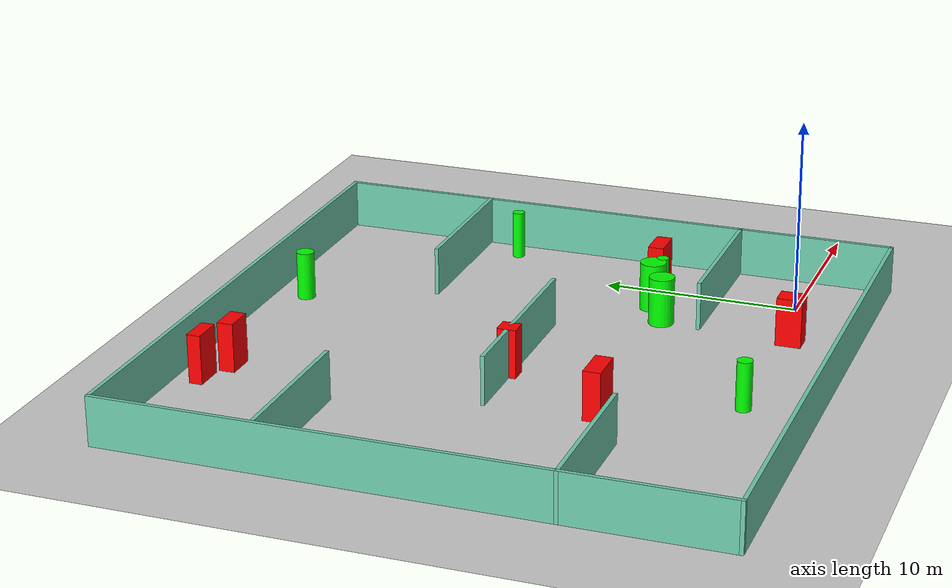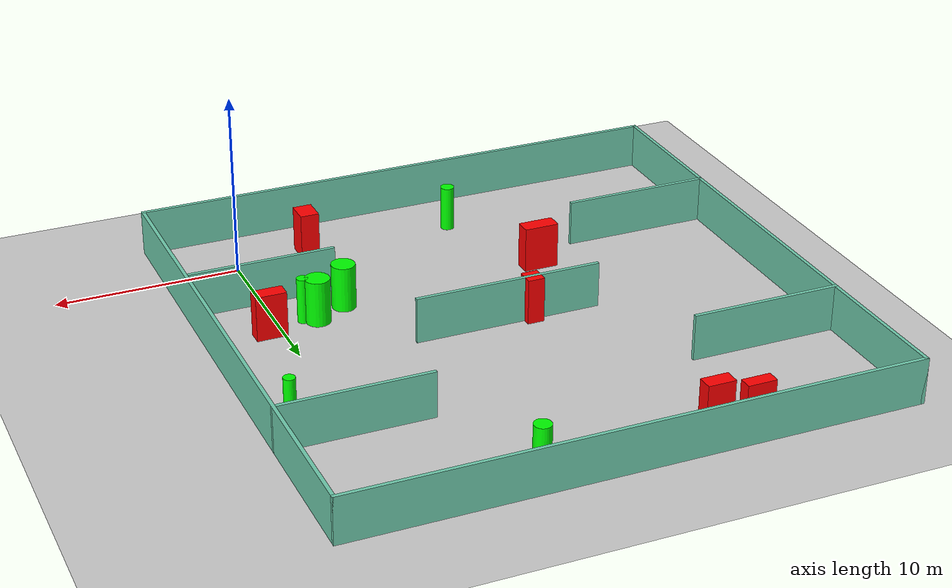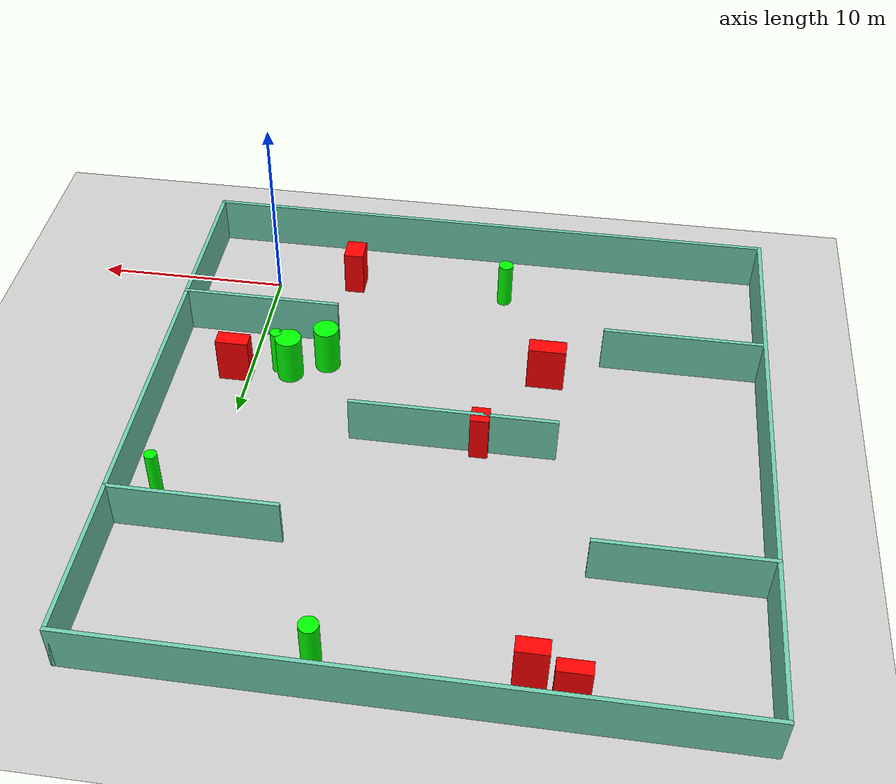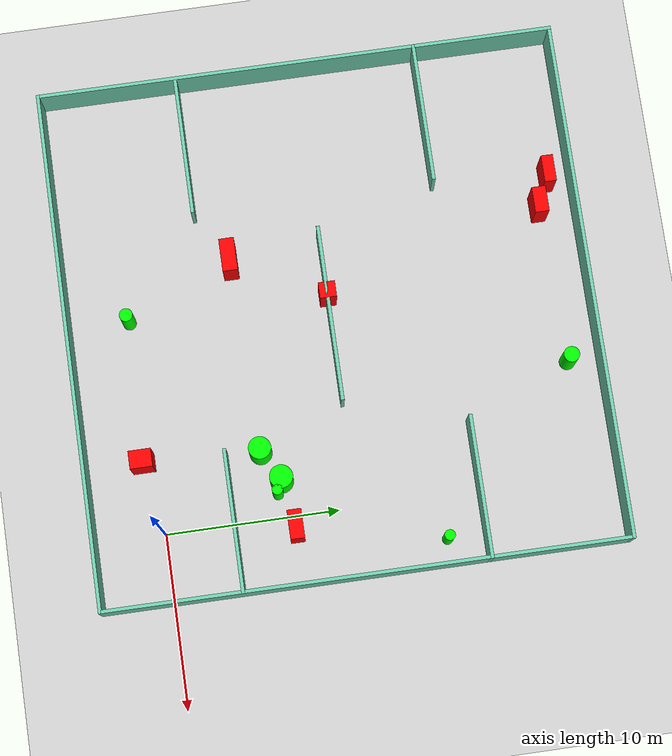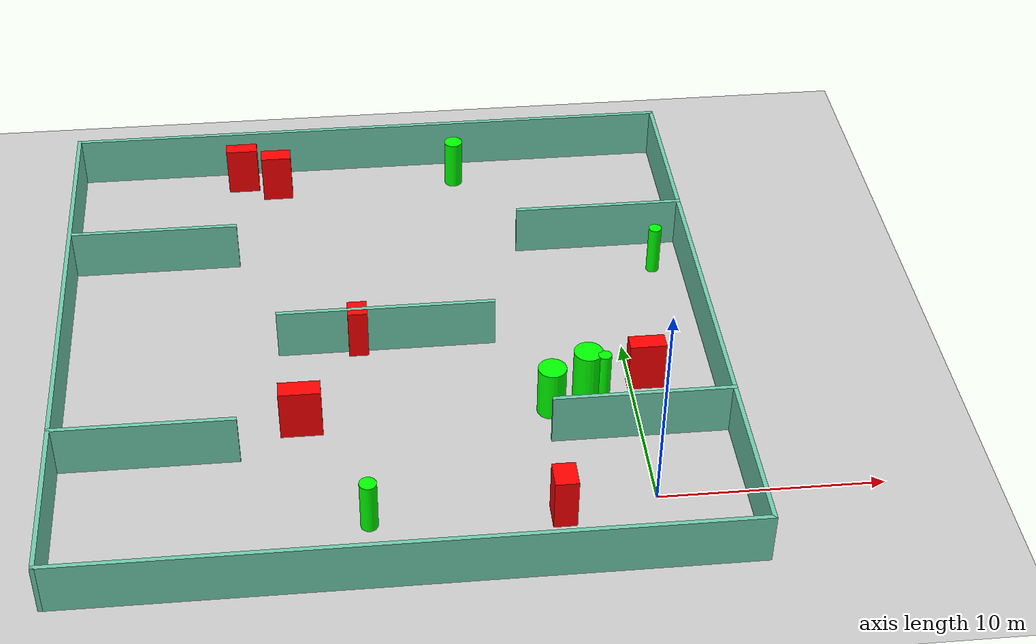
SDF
<sdf version="1.7">
 <world name="default">
  <light name="sun" type="directional">
   <pose>0 0 10 0 -0 0</pose>
   <diffuse>0.8 0.8 0.8 1</diffuse>
   <specular>0.2 0.2 0.2 1</specular>
   <attenuation>
    <range>1000</range>
    <constant>0.9</constant>
    <linear>0.01</linear>
    <quadratic>0.001</quadratic>
   </attenuation>
   <direction>-0.5 0.1 -0.9</direction>
   <spot><inner_angle>0</inner_angle><outer_angle>0</outer_angle><falloff>0</falloff></spot>
  </light>
  <model name="ground_plane">
   <static>1</static>
   <link name="link">
    <collision name="collision">
     <geometry><plane><normal>0 0 1</normal><size>100 100</size></plane></geometry>
     <surface>
      <contact><collide_bitmask>65535</collide_bitmask></contact>
      <friction><ode><mu>100</mu><mu2>50</mu2></ode></friction>
     </surface>
    </collision>
    <visual name="visual">
     <cast_shadows>0</cast_shadows>
     <geometry><plane><normal>0 0 1</normal><size>100 100</size></plane></geometry>
     <material>
      <script><uri>file://media/materials/scripts/gazebo.material</uri><name>Gazebo/Grey</name></script>
     </material>
    </visual>
   </link>
  </model>
  <gravity>0 0 -9.8</gravity>
  <magnetic_field>6e-06 2.3e-05 -4.2e-05</magnetic_field>
  <atmosphere type="adiabatic"/>
  <physics type="ode">
   <max_step_size>0.001</max_step_size>
   <real_time_factor>1</real_time_factor>
   <real_time_update_rate>1000</real_time_update_rate>
  </physics>
  <scene><ambient>0.4 0.4 0.4 1</ambient><background>0.7 0.7 0.7 1</background><shadows>1</shadows></scene>
  <spherical_coordinates>
   <surface_model>EARTH_WGS84</surface_model>
   <latitude_deg>0</latitude_deg>
   <longitude_deg>0</longitude_deg>
   <elevation>0</elevation>
   <heading_deg>0</heading_deg>
  </spherical_coordinates>
  <model name="my_base_walls">
   <link name="Wall_10">
    <collision name="Wall_10_Collision">
     <geometry><box><size>8.2 0.2 2.5</size></box></geometry>
     <pose>0 0 1.25 0 -0 0</pose>
    </collision>
    <visual name="Wall_10_Visual">
     <pose>0 0 1.25 0 -0 0</pose>
     <geometry><box><size>8.2 0.2 2.5</size></box></geometry>
     <material>
      <script><uri>file://media/materials/scripts/gazebo.material</uri><name>Gazebo/Grey</name></script>
      <ambient>0.435294 0.796078 0.67451 1</ambient>
     </material>
     <meta><layer>0</layer></meta>
    </visual>
    <pose>-11 -7 0 0 -0 0</pose>
   </link>
   <link name="Wall_12">
    <collision name="Wall_12_Collision">
     <geometry><box><size>8.2 0.2 2.5</size></box></geometry>
     <pose>0 0 1.25 0 -0 0</pose>
    </collision>
    <visual name="Wall_12_Visual">
     <pose>0 0 1.25 0 -0 0</pose>
     <geometry><box><size>8.2 0.2 2.5</size></box></geometry>
     <material>
      <script><uri>file://media/materials/scripts/gazebo.material</uri><name>Gazebo/Grey</name></script>
      <ambient>0.435294 0.796078 0.67451 1</ambient>
     </material>
     <meta><layer>0</layer></meta>
    </visual>
    <pose>-11 7 0 0 -0 0</pose>
   </link>
   <link name="Wall_14">
    <collision name="Wall_14_Collision">
     <geometry><box><size>8.2 0.2 2.5</size></box></geometry>
     <pose>0 0 1.25 0 -0 0</pose>
    </collision>
    <visual name="Wall_14_Visual">
     <pose>0 0 1.25 0 -0 0</pose>
     <geometry><box><size>8.2 0.2 2.5</size></box></geometry>
     <material>
      <script><uri>file://media/materials/scripts/gazebo.material</uri><name>Gazebo/Grey</name></script>
      <ambient>0.435294 0.796078 0.67451 1</ambient>
     </material>
     <meta><layer>0</layer></meta>
    </visual>
    <pose>11 7 0 0 -0 3.14159</pose>
   </link>
   <link name="Wall_16">
    <collision name="Wall_16_Collision">
     <geometry><box><size>10.2 0.2 2.5</size></box></geometry>
     <pose>0 0 1.25 0 -0 0</pose>
    </collision>
    <visual name="Wall_16_Visual">
     <pose>0 0 1.25 0 -0 0</pose>
     <geometry><box><size>10.2 0.2 2.5</size></box></geometry>
     <material>
      <script><uri>file://media/materials/scripts/gazebo.material</uri><name>Gazebo/Grey</name></script>
      <ambient>0.435294 0.796078 0.67451 1</ambient>
     </material>
     <meta><layer>0</layer></meta>
    </visual>
    <pose>0 0 0 0 -0 3.14159</pose>
   </link>
   <link name="Wall_2">
    <collision name="Wall_2_Collision">
     <geometry><box><size>30.2 0.2 2.5</size></box></geometry>
     <pose>0 0 1.25 0 -0 0</pose>
    </collision>
    <visual name="Wall_2_Visual">
     <pose>0 0 1.25 0 -0 0</pose>
     <geometry><box><size>30.2 0.2 2.5</size></box></geometry>
     <material>
      <script><uri>file://media/materials/scripts/gazebo.material</uri><name>Gazebo/Grey</name></script>
      <ambient>0.435294 0.796078 0.67451 1</ambient>
     </material>
     <meta><layer>0</layer></meta>
    </visual>
    <pose>0 -15 0 0 -0 3.14159</pose>
   </link>
   <link name="Wall_3">
    <collision name="Wall_3_Collision">
     <geometry><box><size>30.2 0.2 2.5</size></box></geometry>
     <pose>0 0 1.25 0 -0 0</pose>
    </collision>
    <visual name="Wall_3_Visual">
     <pose>0 0 1.25 0 -0 0</pose>
     <geometry><box><size>30.2 0.2 2.5</size></box></geometry>
     <material>
      <script><uri>file://media/materials/scripts/gazebo.material</uri><name>Gazebo/Grey</name></script>
      <ambient>0.435294 0.796078 0.67451 1</ambient>
     </material>
     <meta><layer>0</layer></meta>
    </visual>
    <pose>-15 0 0 0 -0 1.5708</pose>
   </link>
   <link name="Wall_4">
    <collision name="Wall_4_Collision">
     <geometry><box><size>30.2 0.2 2.5</size></box></geometry>
     <pose>0 0 1.25 0 -0 0</pose>
    </collision>
    <visual name="Wall_4_Visual">
     <pose>0 0 1.25 0 -0 0</pose>
     <geometry><box><size>30.2 0.2 2.5</size></box></geometry>
     <material>
      <script><uri>file://media/materials/scripts/gazebo.material</uri><name>Gazebo/Grey</name></script>
      <ambient>0.435294 0.796078 0.67451 1</ambient>
     </material>
     <meta><layer>0</layer></meta>
    </visual>
    <pose>0 15 0 0 -0 0</pose>
   </link>
   <link name="Wall_6">
    <collision name="Wall_6_Collision">
     <geometry><box><size>30.2 0.2 2.5</size></box></geometry>
     <pose>0 0 1.25 0 -0 0</pose>
    </collision>
    <visual name="Wall_6_Visual">
     <pose>0 0 1.25 0 -0 0</pose>
     <geometry><box><size>30.2 0.2 2.5</size></box></geometry>
     <material>
      <script><uri>file://media/materials/scripts/gazebo.material</uri><name>Gazebo/Grey</name></script>
      <ambient>0.435294 0.796078 0.67451 1</ambient>
     </material>
     <meta><layer>0</layer></meta>
    </visual>
    <pose>15 0 0 0 -0 1.5708</pose>
   </link>
   <link name="Wall_8">
    <collision name="Wall_8_Collision">
     <geometry><box><size>8.2 0.2 2.5</size></box></geometry>
     <pose>0 0 1.25 0 -0 0</pose>
    </collision>
    <visual name="Wall_8_Visual">
     <pose>0 0 1.25 0 -0 0</pose>
     <geometry><box><size>8.2 0.2 2.5</size></box></geometry>
     <material>
      <script><uri>file://media/materials/scripts/gazebo.material</uri><name>Gazebo/Grey</name></script>
      <ambient>0.435294 0.796078 0.67451 1</ambient>
     </material>
     <meta><layer>0</layer></meta>
    </visual>
    <pose>11 -7 0 0 -0 3.14159</pose>
   </link>
   <static>1</static>
   <pose>-11 11 0 0 -0 0</pose>
  </model>
  <model name="cylinder1">
   <static>1</static>
   <link name="link">
    <inertial>
     <mass>1</mass>
     <inertia><ixx>0.5</ixx><ixy>0</ixy><ixz>0</ixz><iyy>0.5</iyy><iyz>0</iyz><izz>1</izz></inertia>
    </inertial>
    <collision name="collision">
     <geometry><cylinder><radius>0.3812355498788918</radius><length>2.5</length></cylinder></geometry>
    </collision>
    <visual name="visual">
     <geometry><cylinder><radius>0.3812355498788918</radius><length>2.5</length></cylinder></geometry>
     <material>
      <ambient>0 1 0 1</ambient>
      <diffuse>0 1 0 1</diffuse>
      <specular>0.1 0.1 0.1 1</specular>
      <emissive>0 0 0 0</emissive>
     </material>
    </visual>
   </link>
   <pose>-12.463966723201844 -0.52225226750372 1.25 0 0 0</pose>
  </model>
  <model name="cylinder2">
   <static>1</static>
   <link name="link">
    <inertial>
     <mass>1</mass>
     <inertia><ixx>0.5</ixx><ixy>0</ixy><ixz>0</ixz><iyy>0.5</iyy><iyz>0</iyz><izz>1</izz></inertia>
    </inertial>
    <collision name="collision">
     <geometry><cylinder><radius>0.45327531250505565</radius><length>2.5</length></cylinder></geometry>
    </collision>
    <visual name="visual">
     <geometry><cylinder><radius>0.45327531250505565</radius><length>2.5</length></cylinder></geometry>
     <material>
      <ambient>0 1 0 1</ambient>
      <diffuse>0 1 0 1</diffuse>
      <specular>0.1 0.1 0.1 1</specular>
      <emissive>0 0 0 0</emissive>
     </material>
    </visual>
   </link>
   <pose>-6.683548601376458 24.216663972334675 1.25 0 0 0</pose>
  </model>
  <model name="cylinder3">
   <static>1</static>
   <link name="link">
    <inertial>
     <mass>1</mass>
     <inertia><ixx>0.5</ixx><ixy>0</ixy><ixz>0</ixz><iyy>0.5</iyy><iyz>0</iyz><izz>1</izz></inertia>
    </inertial>
    <collision name="collision">
     <geometry><cylinder><radius>0.309569724954609</radius><length>2.5</length></cylinder></geometry>
    </collision>
    <visual name="visual">
     <geometry><cylinder><radius>0.309569724954609</radius><length>2.5</length></cylinder></geometry>
     <material>
      <ambient>0 1 0 1</ambient>
      <diffuse>0 1 0 1</diffuse>
      <specular>0.1 0.1 0.1 1</specular>
      <emissive>0 0 0 0</emissive>
     </material>
    </visual>
   </link>
   <pose>2.485812698754355 15.849126181771034 1.25 0 0 0</pose>
  </model>
  <model name="cylinder4">
   <static>1</static>
   <link name="link">
    <inertial>
     <mass>1</mass>
     <inertia><ixx>0.5</ixx><ixy>0</ixy><ixz>0</ixz><iyy>0.5</iyy><iyz>0</iyz><izz>1</izz></inertia>
    </inertial>
    <collision name="collision">
     <geometry><cylinder><radius>0.3072029299104411</radius><length>2.5</length></cylinder></geometry>
    </collision>
    <visual name="visual">
     <geometry><cylinder><radius>0.3072029299104411</radius><length>2.5</length></cylinder></geometry>
     <material>
      <ambient>0 1 0 1</ambient>
      <diffuse>0 1 0 1</diffuse>
      <specular>0.1 0.1 0.1 1</specular>
      <emissive>0 0 0 0</emissive>
     </material>
    </visual>
   </link>
   <pose>-1.382367459564037 6.657229058669236 1.25 0 0 0</pose>
  </model>
  <model name="cylinder5">
   <static>1</static>
   <link name="link">
    <inertial>
     <mass>1</mass>
     <inertia><ixx>0.5</ixx><ixy>0</ixy><ixz>0</ixz><iyy>0.5</iyy><iyz>0</iyz><izz>1</izz></inertia>
    </inertial>
    <collision name="collision">
     <geometry><cylinder><radius>0.6684837940126959</radius><length>2.5</length></cylinder></geometry>
    </collision>
    <visual name="visual">
     <geometry><cylinder><radius>0.6684837940126959</radius><length>2.5</length></cylinder></geometry>
     <material>
      <ambient>0 1 0 1</ambient>
      <diffuse>0 1 0 1</diffuse>
      <specular>0.1 0.1 0.1 1</specular>
      <emissive>0 0 0 0</emissive>
     </material>
    </visual>
   </link>
   <pose>-2.0858933067364163 6.9631171229678905 1.25 0 0 0</pose>
  </model>
  <model name="cylinder6">
   <static>1</static>
   <link name="link">
    <inertial>
     <mass>1</mass>
     <inertia><ixx>0.5</ixx><ixy>0</ixy><ixz>0</ixz><iyy>0.5</iyy><iyz>0</iyz><izz>1</izz></inertia>
    </inertial>
    <collision name="collision">
     <geometry><cylinder><radius>0.6481942979605246</radius><length>2.5</length></cylinder></geometry>
    </collision>
    <visual name="visual">
     <geometry><cylinder><radius>0.6481942979605246</radius><length>2.5</length></cylinder></geometry>
     <material>
      <ambient>0 1 0 1</ambient>
      <diffuse>0 1 0 1</diffuse>
      <specular>0.1 0.1 0.1 1</specular>
      <emissive>0 0 0 0</emissive>
     </material>
    </visual>
   </link>
   <pose>-3.857390140966558 5.988803595798325 1.25 0 0 0</pose>
  </model>
  <model name="box1">
   <static>1</static>
   <link name="link">
    <inertial>
     <mass>1</mass>
     <inertia><ixx>0.083</ixx><ixy>0</ixy><ixz>0</ixz><iyy>0.083</iyy><iyz>0</iyz><izz>0.083</izz></inertia>
    </inertial>
    <collision name="collision">
     <geometry><box><size>1.901759303836108 0.8685232171916561 2.5</size></box></geometry>
    </collision>
    <visual name="visual">
     <geometry><box><size>1.901759303836108 0.8685232171916561 2.5</size></box></geometry>
     <material>
      <ambient>1 0 0 1</ambient>
      <diffuse>1 0 0 1</diffuse>
      <specular>0.1 0.1 0.1 1</specular>
      <emissive>0 0 0 0</emissive>
     </material>
    </visual>
    <sensor name="my_contact" type="contact">
     <contact><collision>box_collision</collision><topic>__default_topic__</topic></contact>
    </sensor>
   </link>
   <pose>-15.166616884411534 5.699292818244221 1.25 0 0 0</pose>
  </model>
  <model name="box2">
   <static>1</static>
   <link name="link">
    <inertial>
     <mass>1</mass>
     <inertia><ixx>0.083</ixx><ixy>0</ixy><ixz>0</ixz><iyy>0.083</iyy><iyz>0</iyz><izz>0.083</izz></inertia>
    </inertial>
    <collision name="collision">
     <geometry><box><size>0.9130470660730987 0.9563443940568804 2.5</size></box></geometry>
    </collision>
    <visual name="visual">
     <geometry><box><size>0.9130470660730987 0.9563443940568804 2.5</size></box></geometry>
     <material>
      <ambient>1 0 0 1</ambient>
      <diffuse>1 0 0 1</diffuse>
      <specular>0.1 0.1 0.1 1</specular>
      <emissive>0 0 0 0</emissive>
     </material>
    </visual>
    <sensor name="my_contact" type="contact">
     <contact><collision>box_collision</collision><topic>__default_topic__</topic></contact>
    </sensor>
   </link>
   <pose>-12.340259337247087 11.032472937471024 1.25 0 0 0</pose>
  </model>
  <model name="box3">
   <static>1</static>
   <link name="link">
    <inertial>
     <mass>1</mass>
     <inertia><ixx>0.083</ixx><ixy>0</ixy><ixz>0</ixz><iyy>0.083</iyy><iyz>0</iyz><izz>0.083</izz></inertia>
    </inertial>
    <collision name="collision">
     <geometry><box><size>1.6654545911557441 0.8135885560397758 2.5</size></box></geometry>
    </collision>
    <visual name="visual">
     <geometry><box><size>1.6654545911557441 0.8135885560397758 2.5</size></box></geometry>
     <material>
      <ambient>1 0 0 1</ambient>
      <diffuse>1 0 0 1</diffuse>
      <specular>0.1 0.1 0.1 1</specular>
      <emissive>0 0 0 0</emissive>
     </material>
    </visual>
    <sensor name="my_contact" type="contact">
     <contact><collision>box_collision</collision><topic>__default_topic__</topic></contact>
    </sensor>
   </link>
   <pose>0.6699483283499781 7.417052351960439 1.25 0 0 0</pose>
  </model>
  <model name="box4">
   <static>1</static>
   <link name="link">
    <inertial>
     <mass>1</mass>
     <inertia><ixx>0.083</ixx><ixy>0</ixy><ixz>0</ixz><iyy>0.083</iyy><iyz>0</iyz><izz>0.083</izz></inertia>
    </inertial>
    <collision name="collision">
     <geometry><box><size>1.0327971522754344 1.2886328735127552 2.5</size></box></geometry>
    </collision>
    <visual name="visual">
     <geometry><box><size>1.0327971522754344 1.2886328735127552 2.5</size></box></geometry>
     <material>
      <ambient>1 0 0 1</ambient>
      <diffuse>1 0 0 1</diffuse>
      <specular>0.1 0.1 0.1 1</specular>
      <emissive>0 0 0 0</emissive>
     </material>
    </visual>
    <sensor name="my_contact" type="contact">
     <contact><collision>box_collision</collision><topic>__default_topic__</topic></contact>
    </sensor>
   </link>
   <pose>-4.186486684186539 -0.7305833673479807 1.25 0 0 0</pose>
  </model>
  <model name="box5">
   <static>1</static>
   <link name="link">
    <inertial>
     <mass>1</mass>
     <inertia><ixx>0.083</ixx><ixy>0</ixy><ixz>0</ixz><iyy>0.083</iyy><iyz>0</iyz><izz>0.083</izz></inertia>
    </inertial>
    <collision name="collision">
     <geometry><box><size>1.5543629019573688 0.682774136174026 2.5</size></box></geometry>
    </collision>
    <visual name="visual">
     <geometry><box><size>1.5543629019573688 0.682774136174026 2.5</size></box></geometry>
     <material>
      <ambient>1 0 0 1</ambient>
      <diffuse>1 0 0 1</diffuse>
      <specular>0.1 0.1 0.1 1</specular>
      <emissive>0 0 0 0</emissive>
     </material>
    </visual>
    <sensor name="my_contact" type="contact">
     <contact><collision>box_collision</collision><topic>__default_topic__</topic></contact>
    </sensor>
   </link>
   <pose>-17.640997457697495 24.65019266060188 1.25 0 0 0</pose>
  </model>
  <model name="box6">
   <static>1</static>
   <link name="link">
    <inertial>
     <mass>1</mass>
     <inertia><ixx>0.083</ixx><ixy>0</ixy><ixz>0</ixz><iyy>0.083</iyy><iyz>0</iyz><izz>0.083</izz></inertia>
    </inertial>
    <collision name="collision">
     <geometry><box><size>1.4871760447772744 0.8085372900940964 2.5</size></box></geometry>
    </collision>
    <visual name="visual">
     <geometry><box><size>1.4871760447772744 0.8085372900940964 2.5</size></box></geometry>
     <material>
      <ambient>1 0 0 1</ambient>
      <diffuse>1 0 0 1</diffuse>
      <specular>0.1 0.1 0.1 1</specular>
      <emissive>0 0 0 0</emissive>
     </material>
    </visual>
    <sensor name="my_contact" type="contact">
     <contact><collision>box_collision</collision><topic>__default_topic__</topic></contact>
    </sensor>
   </link>
   <pose>-15.890582186555896 23.89317175451786 1.25 0 0 0</pose>
  </model>
 </world>
</sdf>
